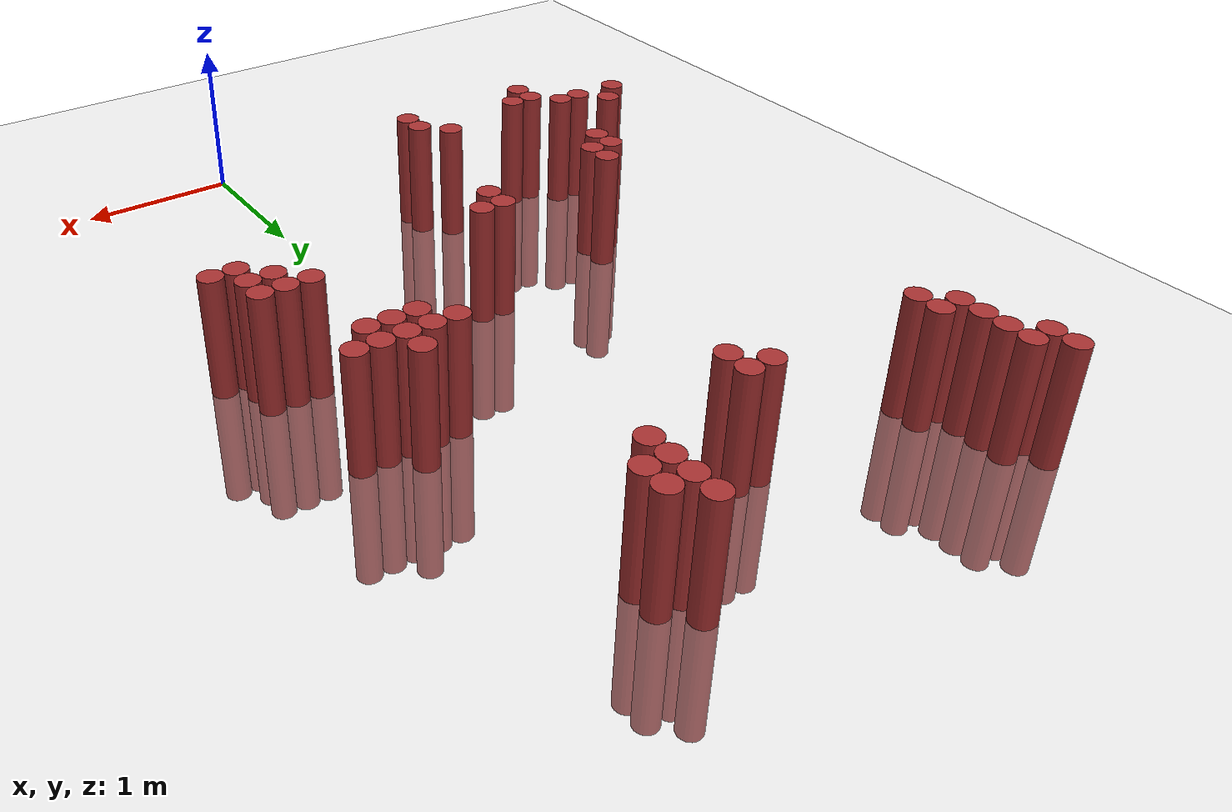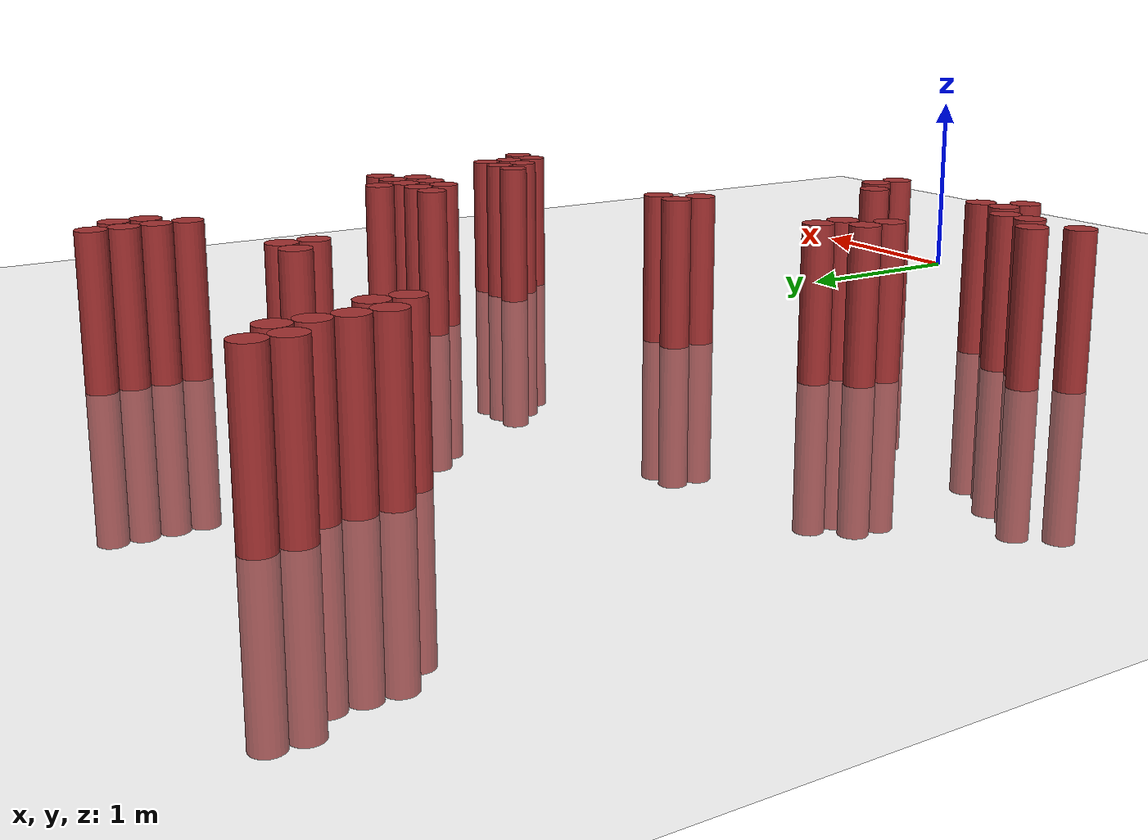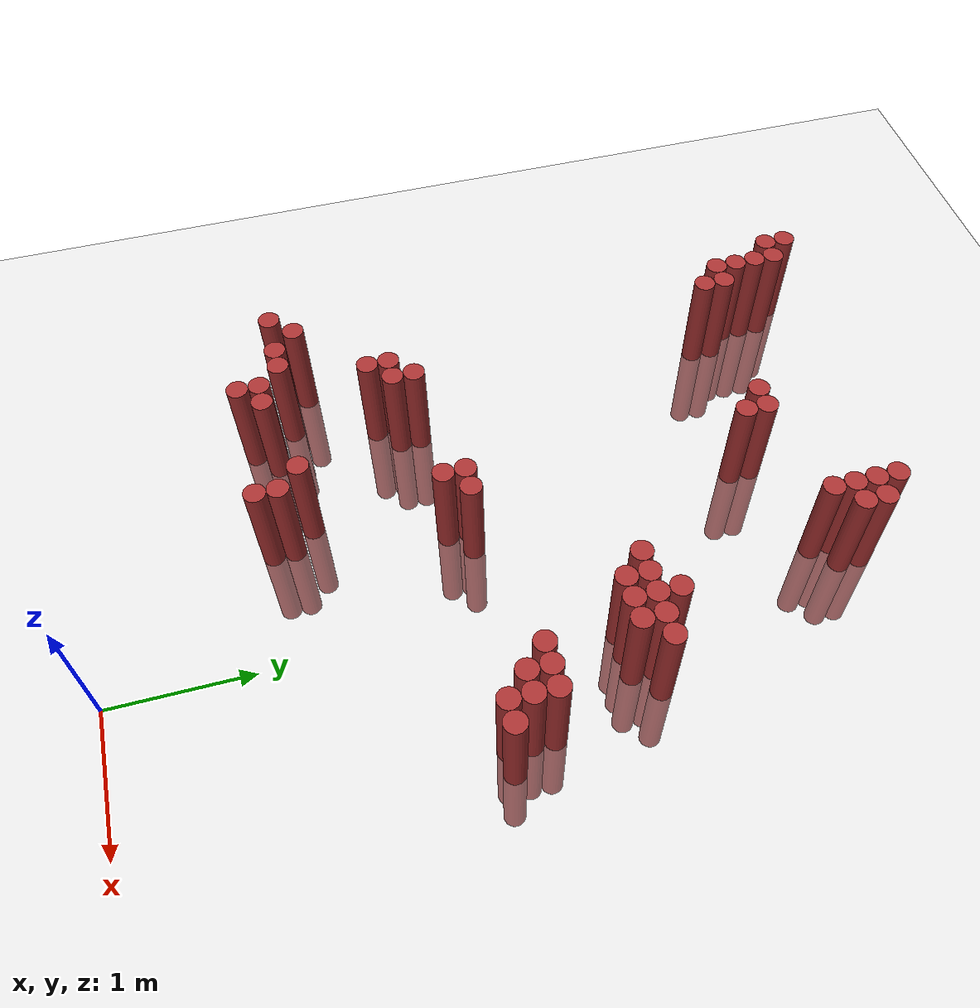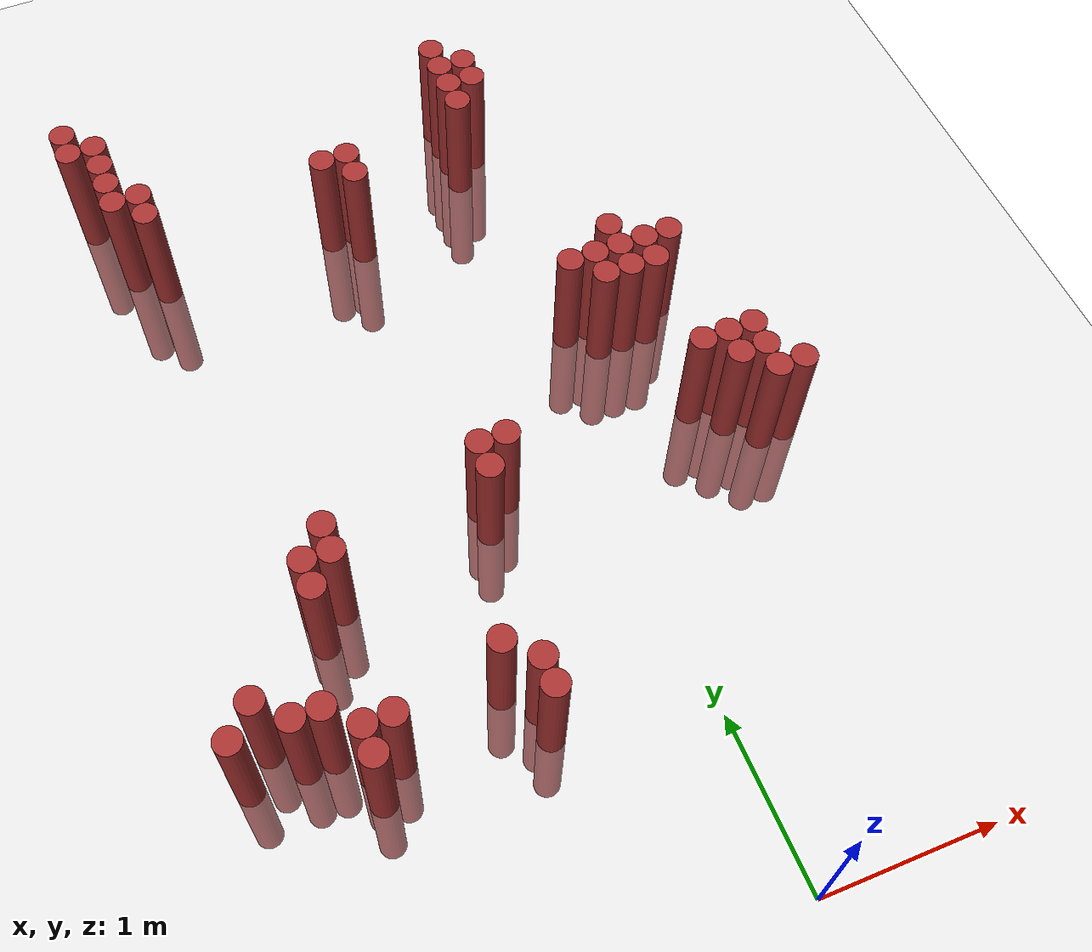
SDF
<sdf version="1.6">
 <world name="default">
  <model name="ground_plane">
   <static>1</static>
   <link name="link">
    <collision name="collision">
     <geometry><plane><normal>0 0 1</normal><size>100 100</size></plane></geometry>
     <surface><friction><ode><mu>100</mu><mu2>50</mu2></ode></friction></surface>
    </collision>
    <visual name="visual">
     <cast_shadows>0</cast_shadows>
     <geometry><plane><normal>0 0 1</normal><size>100 100</size></plane></geometry>
     <material>
      <script><uri>file://media/materials/scripts/gazebo.material</uri><name>Gazebo/Grey</name></script>
     </material>
    </visual>
   </link>
  </model>
  <model name="unit_cylinder_323">
   <static>1</static>
   <pose>-2.375000 1.525000 0.000000 0.000000 0.000000 0.000000</pose>
   <link name="link">
    <inertial>
     <mass>1</mass>
     <inertia><ixx>0.145833</ixx><ixy>0</ixy><ixz>0</ixz><iyy>0.145833</iyy><iyz>0</iyz><izz>0.125</izz></inertia>
    </inertial>
    <collision name="collision">
     <geometry><cylinder><radius>0.075000</radius><length>1.5</length></cylinder></geometry>
    </collision>
    <visual name="visual">
     <geometry><cylinder><radius>0.075000</radius><length>1.5</length></cylinder></geometry>
     <material>
      <ambient>0.648000 0.192000 0.192000 1</ambient>
      <diffuse>0.648000 0.192000 0.192000 1</diffuse>
     </material>
     <material>
      <script><name>Gazebo/Grey</name><uri>file://media/materials/scripts/gazebo.material</uri></script>
     </material>
    </visual>
   </link>
  </model>
  <model name="unit_cylinder_326">
   <static>1</static>
   <pose>-2.225000 1.675000 0.000000 0.000000 0.000000 0.000000</pose>
   <link name="link">
    <inertial>
     <mass>1</mass>
     <inertia><ixx>0.145833</ixx><ixy>0</ixy><ixz>0</ixz><iyy>0.145833</iyy><iyz>0</iyz><izz>0.125</izz></inertia>
    </inertial>
    <collision name="collision">
     <geometry><cylinder><radius>0.075000</radius><length>1.5</length></cylinder></geometry>
    </collision>
    <visual name="visual">
     <geometry><cylinder><radius>0.075000</radius><length>1.5</length></cylinder></geometry>
     <material>
      <ambient>0.648000 0.192000 0.192000 1</ambient>
      <diffuse>0.648000 0.192000 0.192000 1</diffuse>
     </material>
     <material>
      <script><name>Gazebo/Grey</name><uri>file://media/materials/scripts/gazebo.material</uri></script>
     </material>
    </visual>
   </link>
  </model>
  <model name="unit_cylinder_327">
   <static>1</static>
   <pose>-2.225000 5.275000 0.000000 0.000000 0.000000 0.000000</pose>
   <link name="link">
    <inertial>
     <mass>1</mass>
     <inertia><ixx>0.145833</ixx><ixy>0</ixy><ixz>0</ixz><iyy>0.145833</iyy><iyz>0</iyz><izz>0.125</izz></inertia>
    </inertial>
    <collision name="collision">
     <geometry><cylinder><radius>0.075000</radius><length>1.5</length></cylinder></geometry>
    </collision>
    <visual name="visual">
     <geometry><cylinder><radius>0.075000</radius><length>1.5</length></cylinder></geometry>
     <material>
      <ambient>0.648000 0.192000 0.192000 1</ambient>
      <diffuse>0.648000 0.192000 0.192000 1</diffuse>
     </material>
     <material>
      <script><name>Gazebo/Grey</name><uri>file://media/materials/scripts/gazebo.material</uri></script>
     </material>
    </visual>
   </link>
  </model>
  <model name="unit_cylinder_328">
   <static>1</static>
   <pose>-2.225000 5.425000 0.000000 0.000000 0.000000 0.000000</pose>
   <link name="link">
    <inertial>
     <mass>1</mass>
     <inertia><ixx>0.145833</ixx><ixy>0</ixy><ixz>0</ixz><iyy>0.145833</iyy><iyz>0</iyz><izz>0.125</izz></inertia>
    </inertial>
    <collision name="collision">
     <geometry><cylinder><radius>0.075000</radius><length>1.5</length></cylinder></geometry>
    </collision>
    <visual name="visual">
     <geometry><cylinder><radius>0.075000</radius><length>1.5</length></cylinder></geometry>
     <material>
      <ambient>0.648000 0.192000 0.192000 1</ambient>
      <diffuse>0.648000 0.192000 0.192000 1</diffuse>
     </material>
     <material>
      <script><name>Gazebo/Grey</name><uri>file://media/materials/scripts/gazebo.material</uri></script>
     </material>
    </visual>
   </link>
  </model>
  <model name="unit_cylinder_332">
   <static>1</static>
   <pose>-2.075000 1.525000 0.000000 0.000000 0.000000 0.000000</pose>
   <link name="link">
    <inertial>
     <mass>1</mass>
     <inertia><ixx>0.145833</ixx><ixy>0</ixy><ixz>0</ixz><iyy>0.145833</iyy><iyz>0</iyz><izz>0.125</izz></inertia>
    </inertial>
    <collision name="collision">
     <geometry><cylinder><radius>0.075000</radius><length>1.5</length></cylinder></geometry>
    </collision>
    <visual name="visual">
     <geometry><cylinder><radius>0.075000</radius><length>1.5</length></cylinder></geometry>
     <material>
      <ambient>0.648000 0.192000 0.192000 1</ambient>
      <diffuse>0.648000 0.192000 0.192000 1</diffuse>
     </material>
     <material>
      <script><name>Gazebo/Grey</name><uri>file://media/materials/scripts/gazebo.material</uri></script>
     </material>
    </visual>
   </link>
  </model>
  <model name="unit_cylinder_333">
   <static>1</static>
   <pose>-2.075000 4.825000 0.000000 0.000000 0.000000 0.000000</pose>
   <link name="link">
    <inertial>
     <mass>1</mass>
     <inertia><ixx>0.145833</ixx><ixy>0</ixy><ixz>0</ixz><iyy>0.145833</iyy><iyz>0</iyz><izz>0.125</izz></inertia>
    </inertial>
    <collision name="collision">
     <geometry><cylinder><radius>0.075000</radius><length>1.5</length></cylinder></geometry>
    </collision>
    <visual name="visual">
     <geometry><cylinder><radius>0.075000</radius><length>1.5</length></cylinder></geometry>
     <material>
      <ambient>0.648000 0.192000 0.192000 1</ambient>
      <diffuse>0.648000 0.192000 0.192000 1</diffuse>
     </material>
     <material>
      <script><name>Gazebo/Grey</name><uri>file://media/materials/scripts/gazebo.material</uri></script>
     </material>
    </visual>
   </link>
  </model>
  <model name="unit_cylinder_334">
   <static>1</static>
   <pose>-2.075000 4.975000 0.000000 0.000000 0.000000 0.000000</pose>
   <link name="link">
    <inertial>
     <mass>1</mass>
     <inertia><ixx>0.145833</ixx><ixy>0</ixy><ixz>0</ixz><iyy>0.145833</iyy><iyz>0</iyz><izz>0.125</izz></inertia>
    </inertial>
    <collision name="collision">
     <geometry><cylinder><radius>0.075000</radius><length>1.5</length></cylinder></geometry>
    </collision>
    <visual name="visual">
     <geometry><cylinder><radius>0.075000</radius><length>1.5</length></cylinder></geometry>
     <material>
      <ambient>0.648000 0.192000 0.192000 1</ambient>
      <diffuse>0.648000 0.192000 0.192000 1</diffuse>
     </material>
     <material>
      <script><name>Gazebo/Grey</name><uri>file://media/materials/scripts/gazebo.material</uri></script>
     </material>
    </visual>
   </link>
  </model>
  <model name="unit_cylinder_335">
   <static>1</static>
   <pose>-2.075000 5.125000 0.000000 0.000000 0.000000 0.000000</pose>
   <link name="link">
    <inertial>
     <mass>1</mass>
     <inertia><ixx>0.145833</ixx><ixy>0</ixy><ixz>0</ixz><iyy>0.145833</iyy><iyz>0</iyz><izz>0.125</izz></inertia>
    </inertial>
    <collision name="collision">
     <geometry><cylinder><radius>0.075000</radius><length>1.5</length></cylinder></geometry>
    </collision>
    <visual name="visual">
     <geometry><cylinder><radius>0.075000</radius><length>1.5</length></cylinder></geometry>
     <material>
      <ambient>0.648000 0.192000 0.192000 1</ambient>
      <diffuse>0.648000 0.192000 0.192000 1</diffuse>
     </material>
     <material>
      <script><name>Gazebo/Grey</name><uri>file://media/materials/scripts/gazebo.material</uri></script>
     </material>
    </visual>
   </link>
  </model>
  <model name="unit_cylinder_336">
   <static>1</static>
   <pose>-2.075000 5.275000 0.000000 0.000000 0.000000 0.000000</pose>
   <link name="link">
    <inertial>
     <mass>1</mass>
     <inertia><ixx>0.145833</ixx><ixy>0</ixy><ixz>0</ixz><iyy>0.145833</iyy><iyz>0</iyz><izz>0.125</izz></inertia>
    </inertial>
    <collision name="collision">
     <geometry><cylinder><radius>0.075000</radius><length>1.5</length></cylinder></geometry>
    </collision>
    <visual name="visual">
     <geometry><cylinder><radius>0.075000</radius><length>1.5</length></cylinder></geometry>
     <material>
      <ambient>0.648000 0.192000 0.192000 1</ambient>
      <diffuse>0.648000 0.192000 0.192000 1</diffuse>
     </material>
     <material>
      <script><name>Gazebo/Grey</name><uri>file://media/materials/scripts/gazebo.material</uri></script>
     </material>
    </visual>
   </link>
  </model>
  <model name="unit_cylinder_339">
   <static>1</static>
   <pose>-1.925000 1.525000 0.000000 0.000000 0.000000 0.000000</pose>
   <link name="link">
    <inertial>
     <mass>1</mass>
     <inertia><ixx>0.145833</ixx><ixy>0</ixy><ixz>0</ixz><iyy>0.145833</iyy><iyz>0</iyz><izz>0.125</izz></inertia>
    </inertial>
    <collision name="collision">
     <geometry><cylinder><radius>0.075000</radius><length>1.5</length></cylinder></geometry>
    </collision>
    <visual name="visual">
     <geometry><cylinder><radius>0.075000</radius><length>1.5</length></cylinder></geometry>
     <material>
      <ambient>0.648000 0.192000 0.192000 1</ambient>
      <diffuse>0.648000 0.192000 0.192000 1</diffuse>
     </material>
     <material>
      <script><name>Gazebo/Grey</name><uri>file://media/materials/scripts/gazebo.material</uri></script>
     </material>
    </visual>
   </link>
  </model>
  <model name="unit_cylinder_340">
   <static>1</static>
   <pose>-1.925000 4.675000 0.000000 0.000000 0.000000 0.000000</pose>
   <link name="link">
    <inertial>
     <mass>1</mass>
     <inertia><ixx>0.145833</ixx><ixy>0</ixy><ixz>0</ixz><iyy>0.145833</iyy><iyz>0</iyz><izz>0.125</izz></inertia>
    </inertial>
    <collision name="collision">
     <geometry><cylinder><radius>0.075000</radius><length>1.5</length></cylinder></geometry>
    </collision>
    <visual name="visual">
     <geometry><cylinder><radius>0.075000</radius><length>1.5</length></cylinder></geometry>
     <material>
      <ambient>0.648000 0.192000 0.192000 1</ambient>
      <diffuse>0.648000 0.192000 0.192000 1</diffuse>
     </material>
     <material>
      <script><name>Gazebo/Grey</name><uri>file://media/materials/scripts/gazebo.material</uri></script>
     </material>
    </visual>
   </link>
  </model>
  <model name="unit_cylinder_341">
   <static>1</static>
   <pose>-1.925000 4.825000 0.000000 0.000000 0.000000 0.000000</pose>
   <link name="link">
    <inertial>
     <mass>1</mass>
     <inertia><ixx>0.145833</ixx><ixy>0</ixy><ixz>0</ixz><iyy>0.145833</iyy><iyz>0</iyz><izz>0.125</izz></inertia>
    </inertial>
    <collision name="collision">
     <geometry><cylinder><radius>0.075000</radius><length>1.5</length></cylinder></geometry>
    </collision>
    <visual name="visual">
     <geometry><cylinder><radius>0.075000</radius><length>1.5</length></cylinder></geometry>
     <material>
      <ambient>0.648000 0.192000 0.192000 1</ambient>
      <diffuse>0.648000 0.192000 0.192000 1</diffuse>
     </material>
     <material>
      <script><name>Gazebo/Grey</name><uri>file://media/materials/scripts/gazebo.material</uri></script>
     </material>
    </visual>
   </link>
  </model>
  <model name="unit_cylinder_344">
   <static>1</static>
   <pose>-1.775000 1.225000 0.000000 0.000000 0.000000 0.000000</pose>
   <link name="link">
    <inertial>
     <mass>1</mass>
     <inertia><ixx>0.145833</ixx><ixy>0</ixy><ixz>0</ixz><iyy>0.145833</iyy><iyz>0</iyz><izz>0.125</izz></inertia>
    </inertial>
    <collision name="collision">
     <geometry><cylinder><radius>0.075000</radius><length>1.5</length></cylinder></geometry>
    </collision>
    <visual name="visual">
     <geometry><cylinder><radius>0.075000</radius><length>1.5</length></cylinder></geometry>
     <material>
      <ambient>0.648000 0.192000 0.192000 1</ambient>
      <diffuse>0.648000 0.192000 0.192000 1</diffuse>
     </material>
     <material>
      <script><name>Gazebo/Grey</name><uri>file://media/materials/scripts/gazebo.material</uri></script>
     </material>
    </visual>
   </link>
  </model>
  <model name="unit_cylinder_345">
   <static>1</static>
   <pose>-1.775000 1.375000 0.000000 0.000000 0.000000 0.000000</pose>
   <link name="link">
    <inertial>
     <mass>1</mass>
     <inertia><ixx>0.145833</ixx><ixy>0</ixy><ixz>0</ixz><iyy>0.145833</iyy><iyz>0</iyz><izz>0.125</izz></inertia>
    </inertial>
    <collision name="collision">
     <geometry><cylinder><radius>0.075000</radius><length>1.5</length></cylinder></geometry>
    </collision>
    <visual name="visual">
     <geometry><cylinder><radius>0.075000</radius><length>1.5</length></cylinder></geometry>
     <material>
      <ambient>0.648000 0.192000 0.192000 1</ambient>
      <diffuse>0.648000 0.192000 0.192000 1</diffuse>
     </material>
     <material>
      <script><name>Gazebo/Grey</name><uri>file://media/materials/scripts/gazebo.material</uri></script>
     </material>
    </visual>
   </link>
  </model>
  <model name="unit_cylinder_346">
   <static>1</static>
   <pose>-1.775000 2.125000 0.000000 0.000000 0.000000 0.000000</pose>
   <link name="link">
    <inertial>
     <mass>1</mass>
     <inertia><ixx>0.145833</ixx><ixy>0</ixy><ixz>0</ixz><iyy>0.145833</iyy><iyz>0</iyz><izz>0.125</izz></inertia>
    </inertial>
    <collision name="collision">
     <geometry><cylinder><radius>0.075000</radius><length>1.5</length></cylinder></geometry>
    </collision>
    <visual name="visual">
     <geometry><cylinder><radius>0.075000</radius><length>1.5</length></cylinder></geometry>
     <material>
      <ambient>0.648000 0.192000 0.192000 1</ambient>
      <diffuse>0.648000 0.192000 0.192000 1</diffuse>
     </material>
     <material>
      <script><name>Gazebo/Grey</name><uri>file://media/materials/scripts/gazebo.material</uri></script>
     </material>
    </visual>
   </link>
  </model>
  <model name="unit_cylinder_347">
   <static>1</static>
   <pose>-1.775000 2.275000 0.000000 0.000000 0.000000 0.000000</pose>
   <link name="link">
    <inertial>
     <mass>1</mass>
     <inertia><ixx>0.145833</ixx><ixy>0</ixy><ixz>0</ixz><iyy>0.145833</iyy><iyz>0</iyz><izz>0.125</izz></inertia>
    </inertial>
    <collision name="collision">
     <geometry><cylinder><radius>0.075000</radius><length>1.5</length></cylinder></geometry>
    </collision>
    <visual name="visual">
     <geometry><cylinder><radius>0.075000</radius><length>1.5</length></cylinder></geometry>
     <material>
      <ambient>0.648000 0.192000 0.192000 1</ambient>
      <diffuse>0.648000 0.192000 0.192000 1</diffuse>
     </material>
     <material>
      <script><name>Gazebo/Grey</name><uri>file://media/materials/scripts/gazebo.material</uri></script>
     </material>
    </visual>
   </link>
  </model>
  <model name="unit_cylinder_352">
   <static>1</static>
   <pose>-1.625000 1.375000 0.000000 0.000000 0.000000 0.000000</pose>
   <link name="link">
    <inertial>
     <mass>1</mass>
     <inertia><ixx>0.145833</ixx><ixy>0</ixy><ixz>0</ixz><iyy>0.145833</iyy><iyz>0</iyz><izz>0.125</izz></inertia>
    </inertial>
    <collision name="collision">
     <geometry><cylinder><radius>0.075000</radius><length>1.5</length></cylinder></geometry>
    </collision>
    <visual name="visual">
     <geometry><cylinder><radius>0.075000</radius><length>1.5</length></cylinder></geometry>
     <material>
      <ambient>0.648000 0.192000 0.192000 1</ambient>
      <diffuse>0.648000 0.192000 0.192000 1</diffuse>
     </material>
     <material>
      <script><name>Gazebo/Grey</name><uri>file://media/materials/scripts/gazebo.material</uri></script>
     </material>
    </visual>
   </link>
  </model>
  <model name="unit_cylinder_353">
   <static>1</static>
   <pose>-1.625000 2.275000 0.000000 0.000000 0.000000 0.000000</pose>
   <link name="link">
    <inertial>
     <mass>1</mass>
     <inertia><ixx>0.145833</ixx><ixy>0</ixy><ixz>0</ixz><iyy>0.145833</iyy><iyz>0</iyz><izz>0.125</izz></inertia>
    </inertial>
    <collision name="collision">
     <geometry><cylinder><radius>0.075000</radius><length>1.5</length></cylinder></geometry>
    </collision>
    <visual name="visual">
     <geometry><cylinder><radius>0.075000</radius><length>1.5</length></cylinder></geometry>
     <material>
      <ambient>0.648000 0.192000 0.192000 1</ambient>
      <diffuse>0.648000 0.192000 0.192000 1</diffuse>
     </material>
     <material>
      <script><name>Gazebo/Grey</name><uri>file://media/materials/scripts/gazebo.material</uri></script>
     </material>
    </visual>
   </link>
  </model>
  <model name="unit_cylinder_354">
   <static>1</static>
   <pose>-1.625000 2.425000 0.000000 0.000000 0.000000 0.000000</pose>
   <link name="link">
    <inertial>
     <mass>1</mass>
     <inertia><ixx>0.145833</ixx><ixy>0</ixy><ixz>0</ixz><iyy>0.145833</iyy><iyz>0</iyz><izz>0.125</izz></inertia>
    </inertial>
    <collision name="collision">
     <geometry><cylinder><radius>0.075000</radius><length>1.5</length></cylinder></geometry>
    </collision>
    <visual name="visual">
     <geometry><cylinder><radius>0.075000</radius><length>1.5</length></cylinder></geometry>
     <material>
      <ambient>0.648000 0.192000 0.192000 1</ambient>
      <diffuse>0.648000 0.192000 0.192000 1</diffuse>
     </material>
     <material>
      <script><name>Gazebo/Grey</name><uri>file://media/materials/scripts/gazebo.material</uri></script>
     </material>
    </visual>
   </link>
  </model>
  <model name="unit_cylinder_360">
   <static>1</static>
   <pose>-1.025000 1.525000 0.000000 0.000000 0.000000 0.000000</pose>
   <link name="link">
    <inertial>
     <mass>1</mass>
     <inertia><ixx>0.145833</ixx><ixy>0</ixy><ixz>0</ixz><iyy>0.145833</iyy><iyz>0</iyz><izz>0.125</izz></inertia>
    </inertial>
    <collision name="collision">
     <geometry><cylinder><radius>0.075000</radius><length>1.5</length></cylinder></geometry>
    </collision>
    <visual name="visual">
     <geometry><cylinder><radius>0.075000</radius><length>1.5</length></cylinder></geometry>
     <material>
      <ambient>0.648000 0.192000 0.192000 1</ambient>
      <diffuse>0.648000 0.192000 0.192000 1</diffuse>
     </material>
     <material>
      <script><name>Gazebo/Grey</name><uri>file://media/materials/scripts/gazebo.material</uri></script>
     </material>
    </visual>
   </link>
  </model>
  <model name="unit_cylinder_362">
   <static>1</static>
   <pose>-0.875000 1.225000 0.000000 0.000000 0.000000 0.000000</pose>
   <link name="link">
    <inertial>
     <mass>1</mass>
     <inertia><ixx>0.145833</ixx><ixy>0</ixy><ixz>0</ixz><iyy>0.145833</iyy><iyz>0</iyz><izz>0.125</izz></inertia>
    </inertial>
    <collision name="collision">
     <geometry><cylinder><radius>0.075000</radius><length>1.5</length></cylinder></geometry>
    </collision>
    <visual name="visual">
     <geometry><cylinder><radius>0.075000</radius><length>1.5</length></cylinder></geometry>
     <material>
      <ambient>0.648000 0.192000 0.192000 1</ambient>
      <diffuse>0.648000 0.192000 0.192000 1</diffuse>
     </material>
     <material>
      <script><name>Gazebo/Grey</name><uri>file://media/materials/scripts/gazebo.material</uri></script>
     </material>
    </visual>
   </link>
  </model>
  <model name="unit_cylinder_363">
   <static>1</static>
   <pose>-0.875000 1.375000 0.000000 0.000000 0.000000 0.000000</pose>
   <link name="link">
    <inertial>
     <mass>1</mass>
     <inertia><ixx>0.145833</ixx><ixy>0</ixy><ixz>0</ixz><iyy>0.145833</iyy><iyz>0</iyz><izz>0.125</izz></inertia>
    </inertial>
    <collision name="collision">
     <geometry><cylinder><radius>0.075000</radius><length>1.5</length></cylinder></geometry>
    </collision>
    <visual name="visual">
     <geometry><cylinder><radius>0.075000</radius><length>1.5</length></cylinder></geometry>
     <material>
      <ambient>0.648000 0.192000 0.192000 1</ambient>
      <diffuse>0.648000 0.192000 0.192000 1</diffuse>
     </material>
     <material>
      <script><name>Gazebo/Grey</name><uri>file://media/materials/scripts/gazebo.material</uri></script>
     </material>
    </visual>
   </link>
  </model>
  <model name="unit_cylinder_364">
   <static>1</static>
   <pose>-0.875000 4.675000 0.000000 0.000000 0.000000 0.000000</pose>
   <link name="link">
    <inertial>
     <mass>1</mass>
     <inertia><ixx>0.145833</ixx><ixy>0</ixy><ixz>0</ixz><iyy>0.145833</iyy><iyz>0</iyz><izz>0.125</izz></inertia>
    </inertial>
    <collision name="collision">
     <geometry><cylinder><radius>0.075000</radius><length>1.5</length></cylinder></geometry>
    </collision>
    <visual name="visual">
     <geometry><cylinder><radius>0.075000</radius><length>1.5</length></cylinder></geometry>
     <material>
      <ambient>0.648000 0.192000 0.192000 1</ambient>
      <diffuse>0.648000 0.192000 0.192000 1</diffuse>
     </material>
     <material>
      <script><name>Gazebo/Grey</name><uri>file://media/materials/scripts/gazebo.material</uri></script>
     </material>
    </visual>
   </link>
  </model>
  <model name="unit_cylinder_365">
   <static>1</static>
   <pose>-0.725000 2.425000 0.000000 0.000000 0.000000 0.000000</pose>
   <link name="link">
    <inertial>
     <mass>1</mass>
     <inertia><ixx>0.145833</ixx><ixy>0</ixy><ixz>0</ixz><iyy>0.145833</iyy><iyz>0</iyz><izz>0.125</izz></inertia>
    </inertial>
    <collision name="collision">
     <geometry><cylinder><radius>0.075000</radius><length>1.5</length></cylinder></geometry>
    </collision>
    <visual name="visual">
     <geometry><cylinder><radius>0.075000</radius><length>1.5</length></cylinder></geometry>
     <material>
      <ambient>0.648000 0.192000 0.192000 1</ambient>
      <diffuse>0.648000 0.192000 0.192000 1</diffuse>
     </material>
     <material>
      <script><name>Gazebo/Grey</name><uri>file://media/materials/scripts/gazebo.material</uri></script>
     </material>
    </visual>
   </link>
  </model>
  <model name="unit_cylinder_366">
   <static>1</static>
   <pose>-0.725000 2.575000 0.000000 0.000000 0.000000 0.000000</pose>
   <link name="link">
    <inertial>
     <mass>1</mass>
     <inertia><ixx>0.145833</ixx><ixy>0</ixy><ixz>0</ixz><iyy>0.145833</iyy><iyz>0</iyz><izz>0.125</izz></inertia>
    </inertial>
    <collision name="collision">
     <geometry><cylinder><radius>0.075000</radius><length>1.5</length></cylinder></geometry>
    </collision>
    <visual name="visual">
     <geometry><cylinder><radius>0.075000</radius><length>1.5</length></cylinder></geometry>
     <material>
      <ambient>0.648000 0.192000 0.192000 1</ambient>
      <diffuse>0.648000 0.192000 0.192000 1</diffuse>
     </material>
     <material>
      <script><name>Gazebo/Grey</name><uri>file://media/materials/scripts/gazebo.material</uri></script>
     </material>
    </visual>
   </link>
  </model>
  <model name="unit_cylinder_367">
   <static>1</static>
   <pose>-0.725000 4.525000 0.000000 0.000000 0.000000 0.000000</pose>
   <link name="link">
    <inertial>
     <mass>1</mass>
     <inertia><ixx>0.145833</ixx><ixy>0</ixy><ixz>0</ixz><iyy>0.145833</iyy><iyz>0</iyz><izz>0.125</izz></inertia>
    </inertial>
    <collision name="collision">
     <geometry><cylinder><radius>0.075000</radius><length>1.5</length></cylinder></geometry>
    </collision>
    <visual name="visual">
     <geometry><cylinder><radius>0.075000</radius><length>1.5</length></cylinder></geometry>
     <material>
      <ambient>0.648000 0.192000 0.192000 1</ambient>
      <diffuse>0.648000 0.192000 0.192000 1</diffuse>
     </material>
     <material>
      <script><name>Gazebo/Grey</name><uri>file://media/materials/scripts/gazebo.material</uri></script>
     </material>
    </visual>
   </link>
  </model>
  <model name="unit_cylinder_368">
   <static>1</static>
   <pose>-0.725000 4.675000 0.000000 0.000000 0.000000 0.000000</pose>
   <link name="link">
    <inertial>
     <mass>1</mass>
     <inertia><ixx>0.145833</ixx><ixy>0</ixy><ixz>0</ixz><iyy>0.145833</iyy><iyz>0</iyz><izz>0.125</izz></inertia>
    </inertial>
    <collision name="collision">
     <geometry><cylinder><radius>0.075000</radius><length>1.5</length></cylinder></geometry>
    </collision>
    <visual name="visual">
     <geometry><cylinder><radius>0.075000</radius><length>1.5</length></cylinder></geometry>
     <material>
      <ambient>0.648000 0.192000 0.192000 1</ambient>
      <diffuse>0.648000 0.192000 0.192000 1</diffuse>
     </material>
     <material>
      <script><name>Gazebo/Grey</name><uri>file://media/materials/scripts/gazebo.material</uri></script>
     </material>
    </visual>
   </link>
  </model>
  <model name="unit_cylinder_369">
   <static>1</static>
   <pose>-0.575000 2.575000 0.000000 0.000000 0.000000 0.000000</pose>
   <link name="link">
    <inertial>
     <mass>1</mass>
     <inertia><ixx>0.145833</ixx><ixy>0</ixy><ixz>0</ixz><iyy>0.145833</iyy><iyz>0</iyz><izz>0.125</izz></inertia>
    </inertial>
    <collision name="collision">
     <geometry><cylinder><radius>0.075000</radius><length>1.5</length></cylinder></geometry>
    </collision>
    <visual name="visual">
     <geometry><cylinder><radius>0.075000</radius><length>1.5</length></cylinder></geometry>
     <material>
      <ambient>0.648000 0.192000 0.192000 1</ambient>
      <diffuse>0.648000 0.192000 0.192000 1</diffuse>
     </material>
     <material>
      <script><name>Gazebo/Grey</name><uri>file://media/materials/scripts/gazebo.material</uri></script>
     </material>
    </visual>
   </link>
  </model>
  <model name="unit_cylinder_370">
   <static>1</static>
   <pose>0.025000 4.825000 0.000000 0.000000 0.000000 0.000000</pose>
   <link name="link">
    <inertial>
     <mass>1</mass>
     <inertia><ixx>0.145833</ixx><ixy>0</ixy><ixz>0</ixz><iyy>0.145833</iyy><iyz>0</iyz><izz>0.125</izz></inertia>
    </inertial>
    <collision name="collision">
     <geometry><cylinder><radius>0.075000</radius><length>1.5</length></cylinder></geometry>
    </collision>
    <visual name="visual">
     <geometry><cylinder><radius>0.075000</radius><length>1.5</length></cylinder></geometry>
     <material>
      <ambient>0.648000 0.192000 0.192000 1</ambient>
      <diffuse>0.648000 0.192000 0.192000 1</diffuse>
     </material>
     <material>
      <script><name>Gazebo/Grey</name><uri>file://media/materials/scripts/gazebo.material</uri></script>
     </material>
    </visual>
   </link>
  </model>
  <model name="unit_cylinder_371">
   <static>1</static>
   <pose>0.025000 4.975000 0.000000 0.000000 0.000000 0.000000</pose>
   <link name="link">
    <inertial>
     <mass>1</mass>
     <inertia><ixx>0.145833</ixx><ixy>0</ixy><ixz>0</ixz><iyy>0.145833</iyy><iyz>0</iyz><izz>0.125</izz></inertia>
    </inertial>
    <collision name="collision">
     <geometry><cylinder><radius>0.075000</radius><length>1.5</length></cylinder></geometry>
    </collision>
    <visual name="visual">
     <geometry><cylinder><radius>0.075000</radius><length>1.5</length></cylinder></geometry>
     <material>
      <ambient>0.648000 0.192000 0.192000 1</ambient>
      <diffuse>0.648000 0.192000 0.192000 1</diffuse>
     </material>
     <material>
      <script><name>Gazebo/Grey</name><uri>file://media/materials/scripts/gazebo.material</uri></script>
     </material>
    </visual>
   </link>
  </model>
  <model name="unit_cylinder_372">
   <static>1</static>
   <pose>0.025000 5.125000 0.000000 0.000000 0.000000 0.000000</pose>
   <link name="link">
    <inertial>
     <mass>1</mass>
     <inertia><ixx>0.145833</ixx><ixy>0</ixy><ixz>0</ixz><iyy>0.145833</iyy><iyz>0</iyz><izz>0.125</izz></inertia>
    </inertial>
    <collision name="collision">
     <geometry><cylinder><radius>0.075000</radius><length>1.5</length></cylinder></geometry>
    </collision>
    <visual name="visual">
     <geometry><cylinder><radius>0.075000</radius><length>1.5</length></cylinder></geometry>
     <material>
      <ambient>0.648000 0.192000 0.192000 1</ambient>
      <diffuse>0.648000 0.192000 0.192000 1</diffuse>
     </material>
     <material>
      <script><name>Gazebo/Grey</name><uri>file://media/materials/scripts/gazebo.material</uri></script>
     </material>
    </visual>
   </link>
  </model>
  <model name="unit_cylinder_373">
   <static>1</static>
   <pose>0.025000 5.275000 0.000000 0.000000 0.000000 0.000000</pose>
   <link name="link">
    <inertial>
     <mass>1</mass>
     <inertia><ixx>0.145833</ixx><ixy>0</ixy><ixz>0</ixz><iyy>0.145833</iyy><iyz>0</iyz><izz>0.125</izz></inertia>
    </inertial>
    <collision name="collision">
     <geometry><cylinder><radius>0.075000</radius><length>1.5</length></cylinder></geometry>
    </collision>
    <visual name="visual">
     <geometry><cylinder><radius>0.075000</radius><length>1.5</length></cylinder></geometry>
     <material>
      <ambient>0.648000 0.192000 0.192000 1</ambient>
      <diffuse>0.648000 0.192000 0.192000 1</diffuse>
     </material>
     <material>
      <script><name>Gazebo/Grey</name><uri>file://media/materials/scripts/gazebo.material</uri></script>
     </material>
    </visual>
   </link>
  </model>
  <model name="unit_cylinder_375">
   <static>1</static>
   <pose>0.175000 3.475000 0.000000 0.000000 0.000000 0.000000</pose>
   <link name="link">
    <inertial>
     <mass>1</mass>
     <inertia><ixx>0.145833</ixx><ixy>0</ixy><ixz>0</ixz><iyy>0.145833</iyy><iyz>0</iyz><izz>0.125</izz></inertia>
    </inertial>
    <collision name="collision">
     <geometry><cylinder><radius>0.075000</radius><length>1.5</length></cylinder></geometry>
    </collision>
    <visual name="visual">
     <geometry><cylinder><radius>0.075000</radius><length>1.5</length></cylinder></geometry>
     <material>
      <ambient>0.648000 0.192000 0.192000 1</ambient>
      <diffuse>0.648000 0.192000 0.192000 1</diffuse>
     </material>
     <material>
      <script><name>Gazebo/Grey</name><uri>file://media/materials/scripts/gazebo.material</uri></script>
     </material>
    </visual>
   </link>
  </model>
  <model name="unit_cylinder_376">
   <static>1</static>
   <pose>0.175000 4.975000 0.000000 0.000000 0.000000 0.000000</pose>
   <link name="link">
    <inertial>
     <mass>1</mass>
     <inertia><ixx>0.145833</ixx><ixy>0</ixy><ixz>0</ixz><iyy>0.145833</iyy><iyz>0</iyz><izz>0.125</izz></inertia>
    </inertial>
    <collision name="collision">
     <geometry><cylinder><radius>0.075000</radius><length>1.5</length></cylinder></geometry>
    </collision>
    <visual name="visual">
     <geometry><cylinder><radius>0.075000</radius><length>1.5</length></cylinder></geometry>
     <material>
      <ambient>0.648000 0.192000 0.192000 1</ambient>
      <diffuse>0.648000 0.192000 0.192000 1</diffuse>
     </material>
     <material>
      <script><name>Gazebo/Grey</name><uri>file://media/materials/scripts/gazebo.material</uri></script>
     </material>
    </visual>
   </link>
  </model>
  <model name="unit_cylinder_377">
   <static>1</static>
   <pose>0.175000 5.125000 0.000000 0.000000 0.000000 0.000000</pose>
   <link name="link">
    <inertial>
     <mass>1</mass>
     <inertia><ixx>0.145833</ixx><ixy>0</ixy><ixz>0</ixz><iyy>0.145833</iyy><iyz>0</iyz><izz>0.125</izz></inertia>
    </inertial>
    <collision name="collision">
     <geometry><cylinder><radius>0.075000</radius><length>1.5</length></cylinder></geometry>
    </collision>
    <visual name="visual">
     <geometry><cylinder><radius>0.075000</radius><length>1.5</length></cylinder></geometry>
     <material>
      <ambient>0.648000 0.192000 0.192000 1</ambient>
      <diffuse>0.648000 0.192000 0.192000 1</diffuse>
     </material>
     <material>
      <script><name>Gazebo/Grey</name><uri>file://media/materials/scripts/gazebo.material</uri></script>
     </material>
    </visual>
   </link>
  </model>
  <model name="unit_cylinder_380">
   <static>1</static>
   <pose>0.325000 3.325000 0.000000 0.000000 0.000000 0.000000</pose>
   <link name="link">
    <inertial>
     <mass>1</mass>
     <inertia><ixx>0.145833</ixx><ixy>0</ixy><ixz>0</ixz><iyy>0.145833</iyy><iyz>0</iyz><izz>0.125</izz></inertia>
    </inertial>
    <collision name="collision">
     <geometry><cylinder><radius>0.075000</radius><length>1.5</length></cylinder></geometry>
    </collision>
    <visual name="visual">
     <geometry><cylinder><radius>0.075000</radius><length>1.5</length></cylinder></geometry>
     <material>
      <ambient>0.648000 0.192000 0.192000 1</ambient>
      <diffuse>0.648000 0.192000 0.192000 1</diffuse>
     </material>
     <material>
      <script><name>Gazebo/Grey</name><uri>file://media/materials/scripts/gazebo.material</uri></script>
     </material>
    </visual>
   </link>
  </model>
  <model name="unit_cylinder_381">
   <static>1</static>
   <pose>0.325000 3.475000 0.000000 0.000000 0.000000 0.000000</pose>
   <link name="link">
    <inertial>
     <mass>1</mass>
     <inertia><ixx>0.145833</ixx><ixy>0</ixy><ixz>0</ixz><iyy>0.145833</iyy><iyz>0</iyz><izz>0.125</izz></inertia>
    </inertial>
    <collision name="collision">
     <geometry><cylinder><radius>0.075000</radius><length>1.5</length></cylinder></geometry>
    </collision>
    <visual name="visual">
     <geometry><cylinder><radius>0.075000</radius><length>1.5</length></cylinder></geometry>
     <material>
      <ambient>0.648000 0.192000 0.192000 1</ambient>
      <diffuse>0.648000 0.192000 0.192000 1</diffuse>
     </material>
     <material>
      <script><name>Gazebo/Grey</name><uri>file://media/materials/scripts/gazebo.material</uri></script>
     </material>
    </visual>
   </link>
  </model>
  <model name="unit_cylinder_382">
   <static>1</static>
   <pose>0.475000 3.325000 0.000000 0.000000 0.000000 0.000000</pose>
   <link name="link">
    <inertial>
     <mass>1</mass>
     <inertia><ixx>0.145833</ixx><ixy>0</ixy><ixz>0</ixz><iyy>0.145833</iyy><iyz>0</iyz><izz>0.125</izz></inertia>
    </inertial>
    <collision name="collision">
     <geometry><cylinder><radius>0.075000</radius><length>1.5</length></cylinder></geometry>
    </collision>
    <visual name="visual">
     <geometry><cylinder><radius>0.075000</radius><length>1.5</length></cylinder></geometry>
     <material>
      <ambient>0.648000 0.192000 0.192000 1</ambient>
      <diffuse>0.648000 0.192000 0.192000 1</diffuse>
     </material>
     <material>
      <script><name>Gazebo/Grey</name><uri>file://media/materials/scripts/gazebo.material</uri></script>
     </material>
    </visual>
   </link>
  </model>
  <model name="unit_cylinder_383">
   <static>1</static>
   <pose>0.475000 3.475000 0.000000 0.000000 0.000000 0.000000</pose>
   <link name="link">
    <inertial>
     <mass>1</mass>
     <inertia><ixx>0.145833</ixx><ixy>0</ixy><ixz>0</ixz><iyy>0.145833</iyy><iyz>0</iyz><izz>0.125</izz></inertia>
    </inertial>
    <collision name="collision">
     <geometry><cylinder><radius>0.075000</radius><length>1.5</length></cylinder></geometry>
    </collision>
    <visual name="visual">
     <geometry><cylinder><radius>0.075000</radius><length>1.5</length></cylinder></geometry>
     <material>
      <ambient>0.648000 0.192000 0.192000 1</ambient>
      <diffuse>0.648000 0.192000 0.192000 1</diffuse>
     </material>
     <material>
      <script><name>Gazebo/Grey</name><uri>file://media/materials/scripts/gazebo.material</uri></script>
     </material>
    </visual>
   </link>
  </model>
  <model name="unit_cylinder_384">
   <static>1</static>
   <pose>0.475000 3.625000 0.000000 0.000000 0.000000 0.000000</pose>
   <link name="link">
    <inertial>
     <mass>1</mass>
     <inertia><ixx>0.145833</ixx><ixy>0</ixy><ixz>0</ixz><iyy>0.145833</iyy><iyz>0</iyz><izz>0.125</izz></inertia>
    </inertial>
    <collision name="collision">
     <geometry><cylinder><radius>0.075000</radius><length>1.5</length></cylinder></geometry>
    </collision>
    <visual name="visual">
     <geometry><cylinder><radius>0.075000</radius><length>1.5</length></cylinder></geometry>
     <material>
      <ambient>0.648000 0.192000 0.192000 1</ambient>
      <diffuse>0.648000 0.192000 0.192000 1</diffuse>
     </material>
     <material>
      <script><name>Gazebo/Grey</name><uri>file://media/materials/scripts/gazebo.material</uri></script>
     </material>
    </visual>
   </link>
  </model>
  <model name="unit_cylinder_385">
   <static>1</static>
   <pose>0.625000 2.725000 0.000000 0.000000 0.000000 0.000000</pose>
   <link name="link">
    <inertial>
     <mass>1</mass>
     <inertia><ixx>0.145833</ixx><ixy>0</ixy><ixz>0</ixz><iyy>0.145833</iyy><iyz>0</iyz><izz>0.125</izz></inertia>
    </inertial>
    <collision name="collision">
     <geometry><cylinder><radius>0.075000</radius><length>1.5</length></cylinder></geometry>
    </collision>
    <visual name="visual">
     <geometry><cylinder><radius>0.075000</radius><length>1.5</length></cylinder></geometry>
     <material>
      <ambient>0.648000 0.192000 0.192000 1</ambient>
      <diffuse>0.648000 0.192000 0.192000 1</diffuse>
     </material>
     <material>
      <script><name>Gazebo/Grey</name><uri>file://media/materials/scripts/gazebo.material</uri></script>
     </material>
    </visual>
   </link>
  </model>
  <model name="unit_cylinder_386">
   <static>1</static>
   <pose>0.625000 3.325000 0.000000 0.000000 0.000000 0.000000</pose>
   <link name="link">
    <inertial>
     <mass>1</mass>
     <inertia><ixx>0.145833</ixx><ixy>0</ixy><ixz>0</ixz><iyy>0.145833</iyy><iyz>0</iyz><izz>0.125</izz></inertia>
    </inertial>
    <collision name="collision">
     <geometry><cylinder><radius>0.075000</radius><length>1.5</length></cylinder></geometry>
    </collision>
    <visual name="visual">
     <geometry><cylinder><radius>0.075000</radius><length>1.5</length></cylinder></geometry>
     <material>
      <ambient>0.648000 0.192000 0.192000 1</ambient>
      <diffuse>0.648000 0.192000 0.192000 1</diffuse>
     </material>
     <material>
      <script><name>Gazebo/Grey</name><uri>file://media/materials/scripts/gazebo.material</uri></script>
     </material>
    </visual>
   </link>
  </model>
  <model name="unit_cylinder_387">
   <static>1</static>
   <pose>0.625000 3.475000 0.000000 0.000000 0.000000 0.000000</pose>
   <link name="link">
    <inertial>
     <mass>1</mass>
     <inertia><ixx>0.145833</ixx><ixy>0</ixy><ixz>0</ixz><iyy>0.145833</iyy><iyz>0</iyz><izz>0.125</izz></inertia>
    </inertial>
    <collision name="collision">
     <geometry><cylinder><radius>0.075000</radius><length>1.5</length></cylinder></geometry>
    </collision>
    <visual name="visual">
     <geometry><cylinder><radius>0.075000</radius><length>1.5</length></cylinder></geometry>
     <material>
      <ambient>0.648000 0.192000 0.192000 1</ambient>
      <diffuse>0.648000 0.192000 0.192000 1</diffuse>
     </material>
     <material>
      <script><name>Gazebo/Grey</name><uri>file://media/materials/scripts/gazebo.material</uri></script>
     </material>
    </visual>
   </link>
  </model>
  <model name="unit_cylinder_388">
   <static>1</static>
   <pose>0.775000 2.575000 0.000000 0.000000 0.000000 0.000000</pose>
   <link name="link">
    <inertial>
     <mass>1</mass>
     <inertia><ixx>0.145833</ixx><ixy>0</ixy><ixz>0</ixz><iyy>0.145833</iyy><iyz>0</iyz><izz>0.125</izz></inertia>
    </inertial>
    <collision name="collision">
     <geometry><cylinder><radius>0.075000</radius><length>1.5</length></cylinder></geometry>
    </collision>
    <visual name="visual">
     <geometry><cylinder><radius>0.075000</radius><length>1.5</length></cylinder></geometry>
     <material>
      <ambient>0.648000 0.192000 0.192000 1</ambient>
      <diffuse>0.648000 0.192000 0.192000 1</diffuse>
     </material>
     <material>
      <script><name>Gazebo/Grey</name><uri>file://media/materials/scripts/gazebo.material</uri></script>
     </material>
    </visual>
   </link>
  </model>
  <model name="unit_cylinder_389">
   <static>1</static>
   <pose>0.775000 2.725000 0.000000 0.000000 0.000000 0.000000</pose>
   <link name="link">
    <inertial>
     <mass>1</mass>
     <inertia><ixx>0.145833</ixx><ixy>0</ixy><ixz>0</ixz><iyy>0.145833</iyy><iyz>0</iyz><izz>0.125</izz></inertia>
    </inertial>
    <collision name="collision">
     <geometry><cylinder><radius>0.075000</radius><length>1.5</length></cylinder></geometry>
    </collision>
    <visual name="visual">
     <geometry><cylinder><radius>0.075000</radius><length>1.5</length></cylinder></geometry>
     <material>
      <ambient>0.648000 0.192000 0.192000 1</ambient>
      <diffuse>0.648000 0.192000 0.192000 1</diffuse>
     </material>
     <material>
      <script><name>Gazebo/Grey</name><uri>file://media/materials/scripts/gazebo.material</uri></script>
     </material>
    </visual>
   </link>
  </model>
  <model name="unit_cylinder_390">
   <static>1</static>
   <pose>0.775000 3.475000 0.000000 0.000000 0.000000 0.000000</pose>
   <link name="link">
    <inertial>
     <mass>1</mass>
     <inertia><ixx>0.145833</ixx><ixy>0</ixy><ixz>0</ixz><iyy>0.145833</iyy><iyz>0</iyz><izz>0.125</izz></inertia>
    </inertial>
    <collision name="collision">
     <geometry><cylinder><radius>0.075000</radius><length>1.5</length></cylinder></geometry>
    </collision>
    <visual name="visual">
     <geometry><cylinder><radius>0.075000</radius><length>1.5</length></cylinder></geometry>
     <material>
      <ambient>0.648000 0.192000 0.192000 1</ambient>
      <diffuse>0.648000 0.192000 0.192000 1</diffuse>
     </material>
     <material>
      <script><name>Gazebo/Grey</name><uri>file://media/materials/scripts/gazebo.material</uri></script>
     </material>
    </visual>
   </link>
  </model>
  <model name="unit_cylinder_391">
   <static>1</static>
   <pose>0.925000 2.425000 0.000000 0.000000 0.000000 0.000000</pose>
   <link name="link">
    <inertial>
     <mass>1</mass>
     <inertia><ixx>0.145833</ixx><ixy>0</ixy><ixz>0</ixz><iyy>0.145833</iyy><iyz>0</iyz><izz>0.125</izz></inertia>
    </inertial>
    <collision name="collision">
     <geometry><cylinder><radius>0.075000</radius><length>1.5</length></cylinder></geometry>
    </collision>
    <visual name="visual">
     <geometry><cylinder><radius>0.075000</radius><length>1.5</length></cylinder></geometry>
     <material>
      <ambient>0.648000 0.192000 0.192000 1</ambient>
      <diffuse>0.648000 0.192000 0.192000 1</diffuse>
     </material>
     <material>
      <script><name>Gazebo/Grey</name><uri>file://media/materials/scripts/gazebo.material</uri></script>
     </material>
    </visual>
   </link>
  </model>
  <model name="unit_cylinder_392">
   <static>1</static>
   <pose>0.925000 2.575000 0.000000 0.000000 0.000000 0.000000</pose>
   <link name="link">
    <inertial>
     <mass>1</mass>
     <inertia><ixx>0.145833</ixx><ixy>0</ixy><ixz>0</ixz><iyy>0.145833</iyy><iyz>0</iyz><izz>0.125</izz></inertia>
    </inertial>
    <collision name="collision">
     <geometry><cylinder><radius>0.075000</radius><length>1.5</length></cylinder></geometry>
    </collision>
    <visual name="visual">
     <geometry><cylinder><radius>0.075000</radius><length>1.5</length></cylinder></geometry>
     <material>
      <ambient>0.648000 0.192000 0.192000 1</ambient>
      <diffuse>0.648000 0.192000 0.192000 1</diffuse>
     </material>
     <material>
      <script><name>Gazebo/Grey</name><uri>file://media/materials/scripts/gazebo.material</uri></script>
     </material>
    </visual>
   </link>
  </model>
  <model name="unit_cylinder_393">
   <static>1</static>
   <pose>0.925000 2.725000 0.000000 0.000000 0.000000 0.000000</pose>
   <link name="link">
    <inertial>
     <mass>1</mass>
     <inertia><ixx>0.145833</ixx><ixy>0</ixy><ixz>0</ixz><iyy>0.145833</iyy><iyz>0</iyz><izz>0.125</izz></inertia>
    </inertial>
    <collision name="collision">
     <geometry><cylinder><radius>0.075000</radius><length>1.5</length></cylinder></geometry>
    </collision>
    <visual name="visual">
     <geometry><cylinder><radius>0.075000</radius><length>1.5</length></cylinder></geometry>
     <material>
      <ambient>0.648000 0.192000 0.192000 1</ambient>
      <diffuse>0.648000 0.192000 0.192000 1</diffuse>
     </material>
     <material>
      <script><name>Gazebo/Grey</name><uri>file://media/materials/scripts/gazebo.material</uri></script>
     </material>
    </visual>
   </link>
  </model>
  <model name="unit_cylinder_394">
   <static>1</static>
   <pose>1.075000 2.425000 0.000000 0.000000 0.000000 0.000000</pose>
   <link name="link">
    <inertial>
     <mass>1</mass>
     <inertia><ixx>0.145833</ixx><ixy>0</ixy><ixz>0</ixz><iyy>0.145833</iyy><iyz>0</iyz><izz>0.125</izz></inertia>
    </inertial>
    <collision name="collision">
     <geometry><cylinder><radius>0.075000</radius><length>1.5</length></cylinder></geometry>
    </collision>
    <visual name="visual">
     <geometry><cylinder><radius>0.075000</radius><length>1.5</length></cylinder></geometry>
     <material>
      <ambient>0.648000 0.192000 0.192000 1</ambient>
      <diffuse>0.648000 0.192000 0.192000 1</diffuse>
     </material>
     <material>
      <script><name>Gazebo/Grey</name><uri>file://media/materials/scripts/gazebo.material</uri></script>
     </material>
    </visual>
   </link>
  </model>
 </world>
</sdf>
